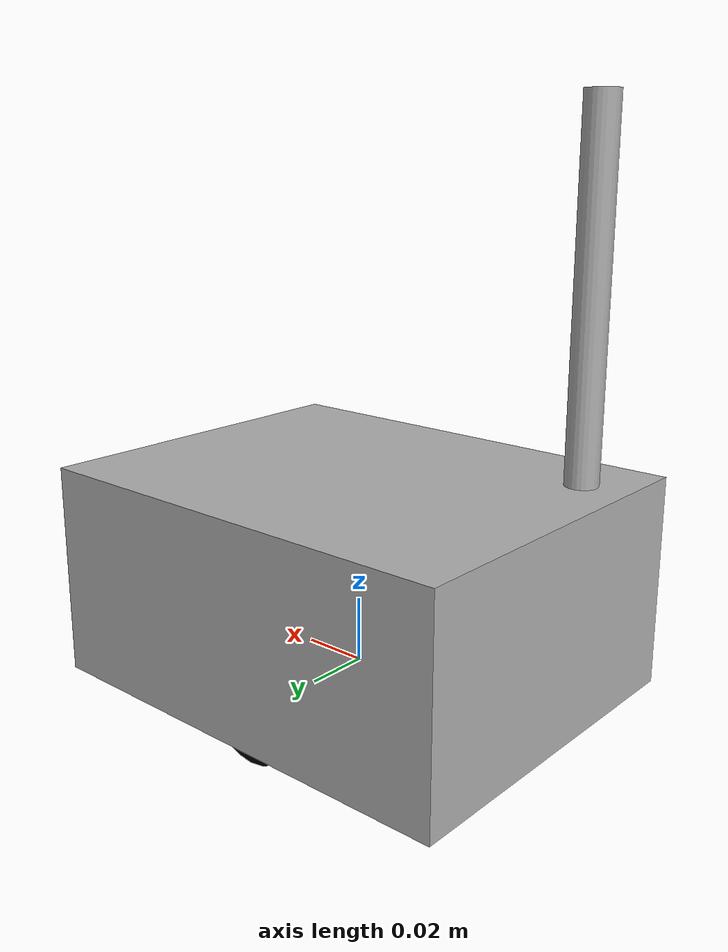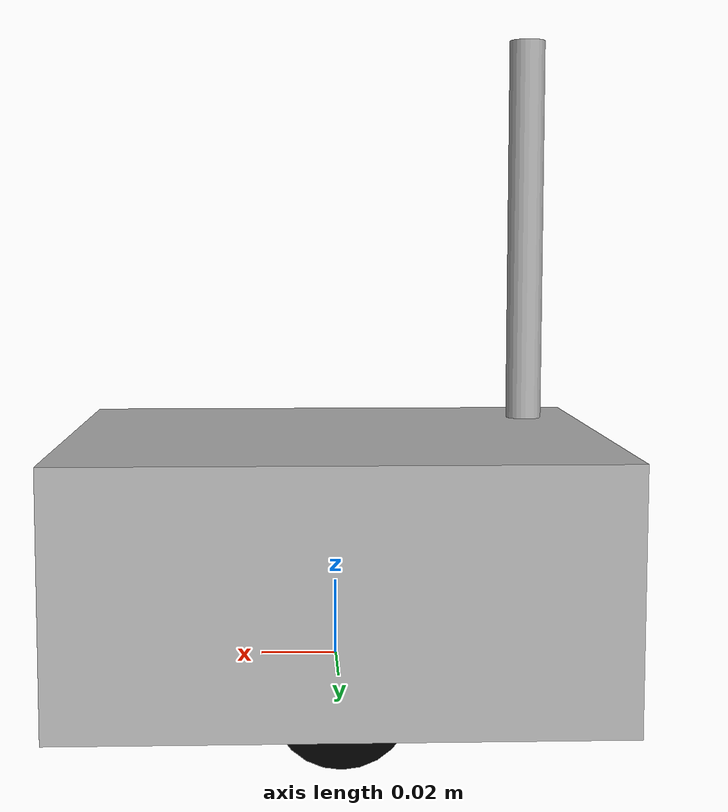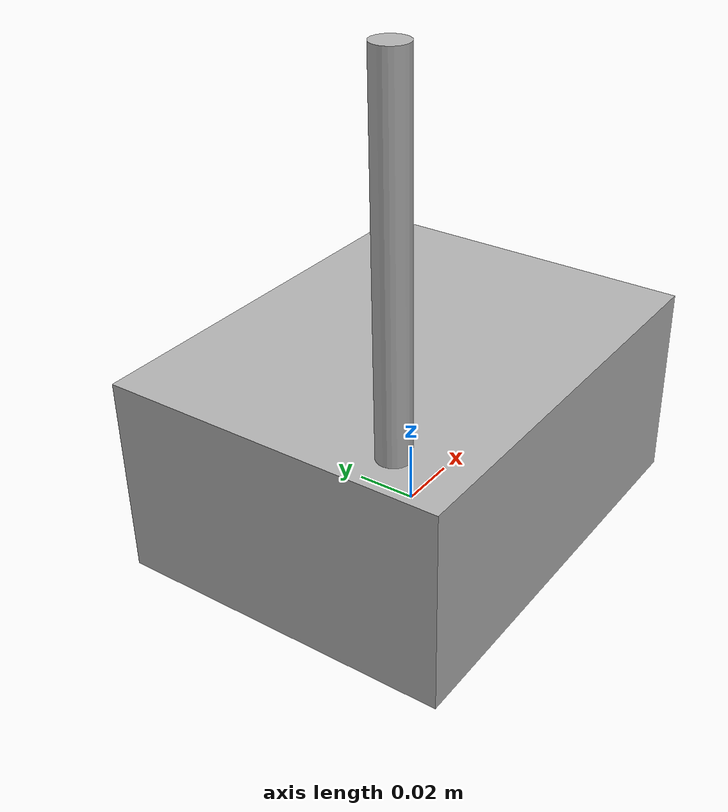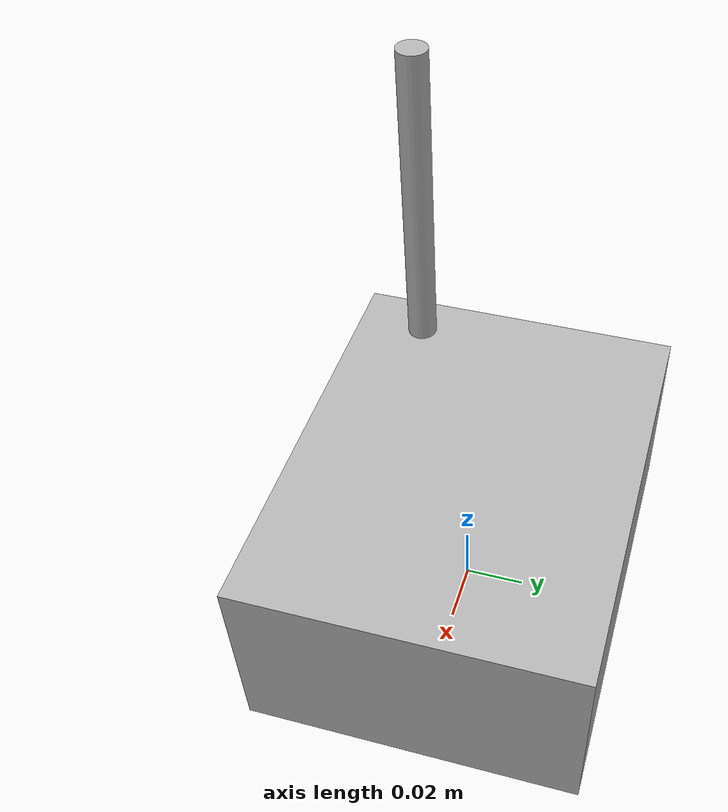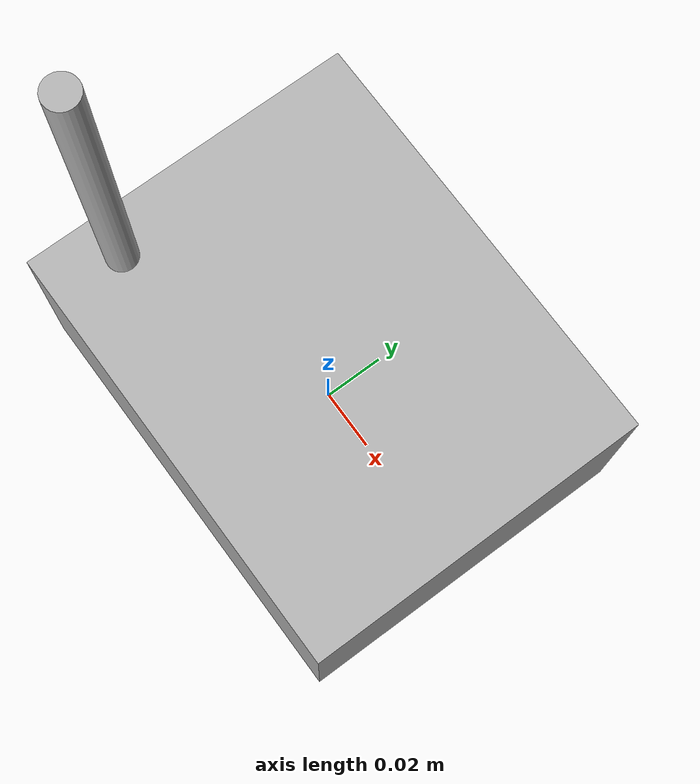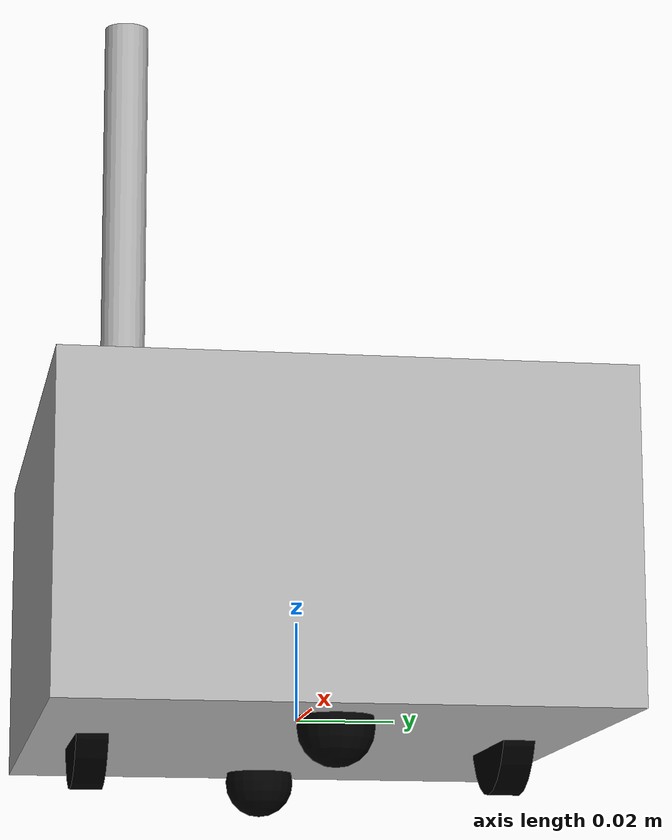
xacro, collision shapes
<?xml version="1.0"?>
<robot xmlns:xacro="http://www.ros.org/wiki/xacro" name="uvrobot">

    <!-- Incluir archivos XACRO -->
    <!--xacro:include filename="$(find kalman_description)/urdf/xacro/properties.xacro"/-->
    <!--xacro:include filename="$(find kalman_description)/urdf/xacro/inertial.xacro"/-->

    <xacro:arg name="use_sim" default='true'  />

    <xacro:include filename="$(find kalman_description)/urdf/xacro/chassis.xacro"/>
    <xacro:include filename="$(find kalman_description)/urdf/xacro/wheel.xacro"/>
    <xacro:include filename="$(find kalman_description)/urdf/xacro/caster_wheel.xacro"/>
    <xacro:include filename="$(find kalman_description)/urdf/xacro/gazebo.xacro"/>
    <xacro:include filename="$(find kalman_description)/urdf/xacro/sensors.xacro"/>

    <!-- Construir robot -->
    <xacro:chassis/>
    <xacro:wheel prefix="left" reflect="1"/>
    <xacro:wheel prefix="right" reflect="-1"/>

    <xacro:caster_wheel index="1">
        <origin xyz="${caster_x_offset} ${caster_y_offset} ${caster_z_offset}" rpy="0 0 0"/>
    </xacro:caster_wheel>
    <xacro:caster_wheel index="2">
        <origin xyz="0.05 ${-caster_y_offset} ${caster_z_offset}" rpy="0 0 0"/>
    </xacro:caster_wheel>

    <xacro:lidar_sensor/>
    <xacro:imu_sensor/>

    <xacro:if value="$(arg use_sim)">
        <xacro:gazebo_plugin_drive/>
        <xacro:friction_gazebo/>
        <xacro:gazebo_sensors/>
        <xacro:gazebo_materials/>
    </xacro:if>

</robot>

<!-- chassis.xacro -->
<robot xmlns:xacro="http://www.ros.org/wiki/xacro">
    <xacro:include filename="$(find kalman_description)/urdf/xacro/properties.xacro"/>
    <xacro:include filename="$(find kalman_description)/urdf/xacro/inertial.xacro"/>

    <material name="steel">
        <color rgba="0.70 0.70 0.70 1.0"/>
    </material>

    <xacro:macro name="chassis">
        <!-- Base footprint (punto de referencia) -->
        <link name="base_footprint"/>

        <!-- Link del chasis cilíndrico -->
        <link name="chassis_link">
            <visual>
                <origin xyz="0 0 0" rpy="0 0 0"/>
                <geometry>
                    <mesh filename="file://$(find kalman_description)/meshes/carcasa.stl" scale="0.001 0.001 0.001"/>
                </geometry>
                <material name="steel"/>
            </visual>
            <collision>
                <origin xyz="0 0 -0.0155" rpy="0 0 0"/>
                <geometry>
                    <box size="${chassis_x} ${chassis_y} ${chassis_z}"/>
                </geometry>
            </collision>
            <xacro:inertial_box
                mass="${chassis_mass}"
                x="${chassis_x}"
                y="${chassis_y}"
                z="${chassis_z}">
                <origin xyz="0 0 0" rpy="0 0 0"/>
            </xacro:inertial_box>
        </link>

        <!-- Joint entre base_footprint y chasis -->
        <joint name="base_chassis_joint" type="fixed">
            <parent link="base_footprint"/>
            <child link="chassis_link"/>
            <origin xyz="0 0 0.04304" rpy="0 0 0"/>
        </joint>

        <link name="antena_link">
            <visual>
                <origin xyz="0 0 0" rpy="0 0 0"/>
                <geometry>
                    <mesh filename="file://$(find kalman_description)/meshes/antena.stl" scale="0.001 0.001 0.001"/>
                </geometry>
                <material name="steel"/>
            </visual>
            <collision>
                <origin xyz="0 0 0" rpy="0 0 0"/>
                <geometry>
                    <cylinder radius="${antena_radius}" length="${antena_ancho}"/>
                </geometry>
            </collision>
            <xacro:inertial_cylinder
                mass="${antena_mass}"
                radius="${antena_radius}"
                length="${antena_ancho}">
                <origin xyz="0 0 0" rpy="0 0 0"/>
            </xacro:inertial_cylinder>
        </link>
        <joint name="chassis_antena_joint" type="fixed">
            <parent link="chassis_link"/>
            <child link="antena_link"/>
            <origin xyz="${antena_x_offset} ${antena_y_offset} ${antena_z_offset}" rpy="0 0 0"/>
        </joint>

    </xacro:macro>
</robot>

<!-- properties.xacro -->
<robot xmlns:xacro="http://www.ros.org/wiki/xacro">

    <!-- Propiedades del chasis -->
    <xacro:property name="chassis_x" value="0.14"/>
    <xacro:property name="chassis_y" value="0.110"/>
    <xacro:property name="chassis_z" value="0.065"/>
    <xacro:property name="chassis_mass" value="1.0"/>

    <!-- Propiedades de ruedas -->
    <xacro:property name="wheel_radius" value="0.017"/>
    <xacro:property name="wheel_width" value="0.00645"/>
    <xacro:property name="wheel_mass" value="0.5"/>
    <xacro:property name="wheel_separation" value="0.086"/>  <!-- Separación entre ruedas -->
    <xacro:property name="wheel_z_offset" value="-0.040650"/>   <!-- Posición vertical //-0.08 m posicion bajo el chasis -->
    <xacro:property name="wheel_y_offset" value="-0.002060"/>   <!-- Posición vertical //-0.08 m posicion bajo el chasis -->

    <!-- Propiedades rueda loca -->
    <xacro:property name="caster_radius" value="0.0075"/>
    <xacro:property name="caster_mass" value="0.1"/>
    <xacro:property name="caster_x_offset" value="-0.057750"/>
    <xacro:property name="caster_y_offset" value="0.0"/>
    <xacro:property name="caster_z_offset" value="-0.0502"/>

    <!-- Propiedades del lidar -->
    <xacro:property name="lidar_altura" value="0.05" />
    <xacro:property name="lidar_largo" value="0.005" />
    <xacro:property name="lidar_ancho" value="0.005" />
    <xacro:property name="lidar_mass" value="0.3" />
    <xacro:property name="lidar_x_offset" value="-0.018391"/>
    <xacro:property name="lidar_z_offset" value="0.0325"/>
    <xacro:property name="lidar_y_offset" value="0.0"/>

    <!-- Propiedades de la antena -->
    <xacro:property name="antena_ancho" value="0.1075" />
    <xacro:property name="antena_radius" value="0.005" />
    <xacro:property name="antena_mass" value="0.3" />
    <xacro:property name="antena_x_offset" value="-0.0555"/>
    <xacro:property name="antena_y_offset" value="-0.031980"/>
    <xacro:property name="antena_z_offset" value="0.0706"/>

    <!-- Propiedades del IMU -->
    <xacro:property name="imu_x_offset" value="0.0"/>
    <xacro:property name="imu_y_offset" value="0.0"/>
    <xacro:property name="imu_z_offset" value="0.0"/>

</robot>

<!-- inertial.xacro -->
<robot xmlns:xacro="http://www.ros.org/wiki/xacro" >

    <xacro:macro name="inertial_sphere" params="mass radius *origin">
        <inertial>
            <xacro:insert_block name="origin"/>
            <mass value="${mass}" />
            <inertia ixx="${(2/5) * mass * (radius*radius)}" ixy="0.0" ixz="0.0"
                    iyy="${(2/5) * mass * (radius*radius)}" iyz="0.0"
                    izz="${(2/5) * mass * (radius*radius)}" />
        </inertial>
    </xacro:macro>

    <xacro:macro name="inertial_box" params="mass x y z *origin">
        <inertial>
            <xacro:insert_block name="origin"/>
            <mass value="${mass}" />
            <inertia ixx="${(1/12) * mass * (y*y+z*z)}" ixy="0.0" ixz="0.0"
                    iyy="${(1/12) * mass * (x*x+z*z)}" iyz="0.0"
                    izz="${(1/12) * mass * (x*x+y*y)}" />
        </inertial>
    </xacro:macro>

    <xacro:macro name="inertial_cylinder" params="mass length radius *origin">
        <inertial>
            <xacro:insert_block name="origin"/>
            <mass value="${mass}" />
            <inertia ixx="${(1/12) * mass * (3*radius*radius + length*length)}" ixy="0.0" ixz="0.0"
                    iyy="${(1/12) * mass * (3*radius*radius + length*length)}" iyz="0.0"
                    izz="${(1/2) * mass * (radius*radius)}" />
        </inertial>
    </xacro:macro>

</robot>

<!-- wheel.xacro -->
<robot xmlns:xacro="http://www.ros.org/wiki/xacro">
    <xacro:include filename="$(find kalman_description)/urdf/xacro/properties.xacro"/>
    <xacro:include filename="$(find kalman_description)/urdf/xacro/inertial.xacro"/>

    <xacro:macro name="wheel" params="prefix reflect">
        <link name="${prefix}_wheel">
            <visual>
                <origin xyz="0 0 0" rpy="0 0 0"/>
                <geometry>
                    <mesh filename="file://$(find kalman_description)/meshes/rueda.stl" scale="0.001 0.001 0.001"/>
                </geometry>
                <material name="black">
                    <color rgba="0.0 0.0 0.0 1.0"/>
                </material>
            </visual>
            <collision>
                <origin xyz="0 0 0" rpy="0 0 0"/>
                <geometry>
                    <cylinder radius="${wheel_radius}" length="${wheel_width}"/>
                </geometry>
            </collision>
            <xacro:inertial_cylinder
                mass="${wheel_mass}"
                radius="${wheel_radius}"
                length="${wheel_width}">
                <origin xyz="0 0 0" rpy="0 0 0"/>
            </xacro:inertial_cylinder>
        </link>

        <joint name="wheel_${prefix}_joint" type="continuous">
            <parent link="chassis_link"/>
            <child link="${prefix}_wheel"/>
            <origin xyz="0.0 ${wheel_separation/2*reflect} ${wheel_z_offset}" rpy="${-pi/2} 0 0"/>
            <axis xyz="0 0 1"/>
        </joint>
    </xacro:macro>
</robot>

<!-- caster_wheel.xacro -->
<robot xmlns:xacro="http://www.ros.org/wiki/xacro">
    <xacro:include filename="$(find kalman_description)/urdf/xacro/properties.xacro"/>
    <xacro:include filename="$(find kalman_description)/urdf/xacro/inertial.xacro"/>

    <xacro:macro name="caster_wheel" params="index *origin">
        <link name="caster_wheel_${index}">
            <visual>
                <origin xyz="0 0 0" rpy="0 0 0"/>
                <geometry>
                   <mesh filename="file://$(find kalman_description)/meshes/caster_wheel.stl" scale="0.001 0.001 0.001"/>
                </geometry>
                <material name="black">
                    <color rgba="0.0 0.0 0.0 1.0"/>
                </material>
            </visual>
            <collision>
                <origin xyz="0 0 0" rpy="0 0 0"/>
                <geometry>
                    <sphere radius="${caster_radius}"/>
                </geometry>
            </collision>
            <xacro:inertial_sphere
                mass="${caster_mass}"
                radius="${caster_radius}">
                <origin xyz="0 0 0" rpy="0 0 0"/>
            </xacro:inertial_sphere>
        </link>

        <joint name="caster_joint_${index}" type="fixed">
            <parent link="chassis_link"/>
            <child link="caster_wheel_${index}"/>
            <xacro:insert_block name="origin"/>
        </joint>
    </xacro:macro>
</robot>

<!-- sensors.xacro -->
<robot xmlns:xacro="http://www.ros.org/wiki/xacro" >

    <xacro:include filename="$(find kalman_description)/urdf/xacro/properties.xacro"/>
    <xacro:include filename="$(find kalman_description)/urdf/xacro/inertial.xacro"/>

    <!-- Lidar -->
    <xacro:macro name="lidar_sensor">
        <link name="laser_link">
            <!-- No visual geometry - lidar is part of chassis mesh -->
            <inertial>
                <origin xyz="0.0 0.0 0.0" rpy="0.0 0.0 0.0"/>
                <mass value="${lidar_mass}"/>
                <inertia ixx="1e-6" ixy="0.0" ixz="0.0"
                         iyy="1e-6" iyz="0.0"
                         izz="1e-6"/>
            </inertial>
        </link>

        <joint name="base_lidar_joint" type="fixed">
            <origin xyz="${lidar_x_offset} ${lidar_y_offset} ${lidar_z_offset}" rpy="-${pi} 0.0 -${pi/2}"/>
            <parent link="chassis_link"/>
            <child link="laser_link"/>
        </joint>

    </xacro:macro>

    <xacro:macro name="imu_sensor">
        <link name="imu_link">
            <!-- IMU has no visual geometry - it's inside the chassis -->
            <inertial>
                <origin xyz="0.0 0.0 0.0" rpy="0.0 0.0 0.0"/>
                <mass value="0.001"/>
                <inertia ixx="1e-9" ixy="0.0" ixz="0.0"
                         iyy="1e-9" iyz="0.0"
                         izz="1e-9"/>
            </inertial>
        </link>

        <joint name="base_imu_joint" type="fixed">
            <origin xyz="${imu_x_offset} ${imu_y_offset} ${imu_z_offset}" rpy="0.0 0.0 0.0"/>
            <parent link="chassis_link"/>
            <child link="imu_link"/>
        </joint>

    </xacro:macro>

</robot>
